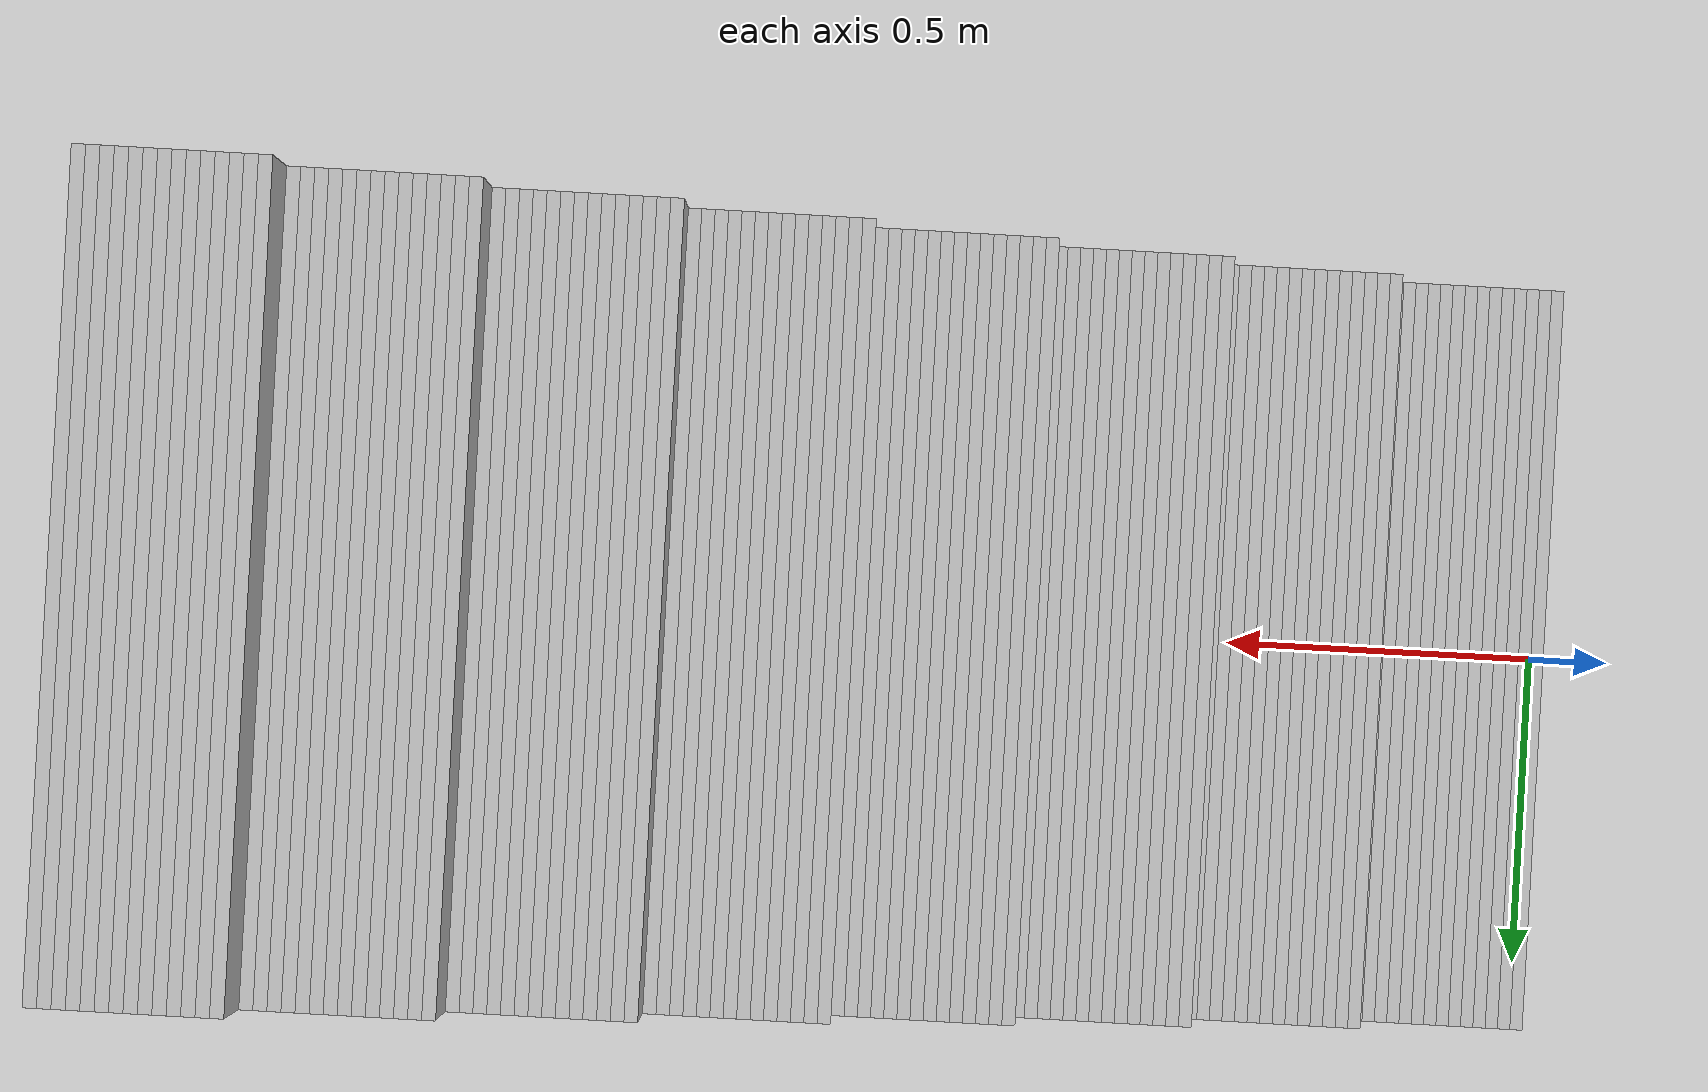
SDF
<?xml version="1.0"?>
<sdf version="1.6">
  <world name="stair_lab">
    <!-- stair_lab_stairs_mid —— 由 stairstudy/fixtures.py 生成（离线候选件，**不被任何在册 launch 引用**）
         场景：踏步深 0.28m 级高 0.10m 共 8 级
         请勿与 worlds/m1_world.world 混用：后者是红线件（各跑 world_before/after.sha 对它取指纹）。 -->
    <include><uri>model://ground_plane</uri></include>
    <include><uri>model://sun</uri></include>
    <model name="stairs_mid">
      <static>1</static>
      <pose>0.000 0.000 0 0 0 0</pose>
        <link name="seg0">
          <pose>0.010 0.000 0.050 0 0 0</pose>
          <collision name="c0"><geometry><box><size>0.02 1.200 0.100</size></box></geometry></collision>
          <visual name="v0"><geometry><box><size>0.02 1.200 0.100</size></box></geometry></visual>
        </link>        <link name="seg1">
          <pose>0.030 0.000 0.050 0 0 0</pose>
          <collision name="c1"><geometry><box><size>0.02 1.200 0.100</size></box></geometry></collision>
          <visual name="v1"><geometry><box><size>0.02 1.200 0.100</size></box></geometry></visual>
        </link>        <link name="seg2">
          <pose>0.050 0.000 0.050 0 0 0</pose>
          <collision name="c2"><geometry><box><size>0.02 1.200 0.100</size></box></geometry></collision>
          <visual name="v2"><geometry><box><size>0.02 1.200 0.100</size></box></geometry></visual>
        </link>        <link name="seg3">
          <pose>0.070 0.000 0.050 0 0 0</pose>
          <collision name="c3"><geometry><box><size>0.02 1.200 0.100</size></box></geometry></collision>
          <visual name="v3"><geometry><box><size>0.02 1.200 0.100</size></box></geometry></visual>
        </link>        <link name="seg4">
          <pose>0.090 0.000 0.050 0 0 0</pose>
          <collision name="c4"><geometry><box><size>0.02 1.200 0.100</size></box></geometry></collision>
          <visual name="v4"><geometry><box><size>0.02 1.200 0.100</size></box></geometry></visual>
        </link>        <link name="seg5">
          <pose>0.110 0.000 0.050 0 0 0</pose>
          <collision name="c5"><geometry><box><size>0.02 1.200 0.100</size></box></geometry></collision>
          <visual name="v5"><geometry><box><size>0.02 1.200 0.100</size></box></geometry></visual>
        </link>        <link name="seg6">
          <pose>0.130 0.000 0.050 0 0 0</pose>
          <collision name="c6"><geometry><box><size>0.02 1.200 0.100</size></box></geometry></collision>
          <visual name="v6"><geometry><box><size>0.02 1.200 0.100</size></box></geometry></visual>
        </link>        <link name="seg7">
          <pose>0.150 0.000 0.050 0 0 0</pose>
          <collision name="c7"><geometry><box><size>0.02 1.200 0.100</size></box></geometry></collision>
          <visual name="v7"><geometry><box><size>0.02 1.200 0.100</size></box></geometry></visual>
        </link>        <link name="seg8">
          <pose>0.170 0.000 0.050 0 0 0</pose>
          <collision name="c8"><geometry><box><size>0.02 1.200 0.100</size></box></geometry></collision>
          <visual name="v8"><geometry><box><size>0.02 1.200 0.100</size></box></geometry></visual>
        </link>        <link name="seg9">
          <pose>0.190 0.000 0.050 0 0 0</pose>
          <collision name="c9"><geometry><box><size>0.02 1.200 0.100</size></box></geometry></collision>
          <visual name="v9"><geometry><box><size>0.02 1.200 0.100</size></box></geometry></visual>
        </link>        <link name="seg10">
          <pose>0.210 0.000 0.050 0 0 0</pose>
          <collision name="c10"><geometry><box><size>0.02 1.200 0.100</size></box></geometry></collision>
          <visual name="v10"><geometry><box><size>0.02 1.200 0.100</size></box></geometry></visual>
        </link>        <link name="seg11">
          <pose>0.230 0.000 0.050 0 0 0</pose>
          <collision name="c11"><geometry><box><size>0.02 1.200 0.100</size></box></geometry></collision>
          <visual name="v11"><geometry><box><size>0.02 1.200 0.100</size></box></geometry></visual>
        </link>        <link name="seg12">
          <pose>0.250 0.000 0.050 0 0 0</pose>
          <collision name="c12"><geometry><box><size>0.02 1.200 0.100</size></box></geometry></collision>
          <visual name="v12"><geometry><box><size>0.02 1.200 0.100</size></box></geometry></visual>
        </link>        <link name="seg13">
          <pose>0.270 0.000 0.050 0 0 0</pose>
          <collision name="c13"><geometry><box><size>0.02 1.200 0.100</size></box></geometry></collision>
          <visual name="v13"><geometry><box><size>0.02 1.200 0.100</size></box></geometry></visual>
        </link>        <link name="seg14">
          <pose>0.290 0.000 0.100 0 0 0</pose>
          <collision name="c14"><geometry><box><size>0.02 1.200 0.200</size></box></geometry></collision>
          <visual name="v14"><geometry><box><size>0.02 1.200 0.200</size></box></geometry></visual>
        </link>        <link name="seg15">
          <pose>0.310 0.000 0.100 0 0 0</pose>
          <collision name="c15"><geometry><box><size>0.02 1.200 0.200</size></box></geometry></collision>
          <visual name="v15"><geometry><box><size>0.02 1.200 0.200</size></box></geometry></visual>
        </link>        <link name="seg16">
          <pose>0.330 0.000 0.100 0 0 0</pose>
          <collision name="c16"><geometry><box><size>0.02 1.200 0.200</size></box></geometry></collision>
          <visual name="v16"><geometry><box><size>0.02 1.200 0.200</size></box></geometry></visual>
        </link>        <link name="seg17">
          <pose>0.350 0.000 0.100 0 0 0</pose>
          <collision name="c17"><geometry><box><size>0.02 1.200 0.200</size></box></geometry></collision>
          <visual name="v17"><geometry><box><size>0.02 1.200 0.200</size></box></geometry></visual>
        </link>        <link name="seg18">
          <pose>0.370 0.000 0.100 0 0 0</pose>
          <collision name="c18"><geometry><box><size>0.02 1.200 0.200</size></box></geometry></collision>
          <visual name="v18"><geometry><box><size>0.02 1.200 0.200</size></box></geometry></visual>
        </link>        <link name="seg19">
          <pose>0.390 0.000 0.100 0 0 0</pose>
          <collision name="c19"><geometry><box><size>0.02 1.200 0.200</size></box></geometry></collision>
          <visual name="v19"><geometry><box><size>0.02 1.200 0.200</size></box></geometry></visual>
        </link>        <link name="seg20">
          <pose>0.410 0.000 0.100 0 0 0</pose>
          <collision name="c20"><geometry><box><size>0.02 1.200 0.200</size></box></geometry></collision>
          <visual name="v20"><geometry><box><size>0.02 1.200 0.200</size></box></geometry></visual>
        </link>        <link name="seg21">
          <pose>0.430 0.000 0.100 0 0 0</pose>
          <collision name="c21"><geometry><box><size>0.02 1.200 0.200</size></box></geometry></collision>
          <visual name="v21"><geometry><box><size>0.02 1.200 0.200</size></box></geometry></visual>
        </link>        <link name="seg22">
          <pose>0.450 0.000 0.100 0 0 0</pose>
          <collision name="c22"><geometry><box><size>0.02 1.200 0.200</size></box></geometry></collision>
          <visual name="v22"><geometry><box><size>0.02 1.200 0.200</size></box></geometry></visual>
        </link>        <link name="seg23">
          <pose>0.470 0.000 0.100 0 0 0</pose>
          <collision name="c23"><geometry><box><size>0.02 1.200 0.200</size></box></geometry></collision>
          <visual name="v23"><geometry><box><size>0.02 1.200 0.200</size></box></geometry></visual>
        </link>        <link name="seg24">
          <pose>0.490 0.000 0.100 0 0 0</pose>
          <collision name="c24"><geometry><box><size>0.02 1.200 0.200</size></box></geometry></collision>
          <visual name="v24"><geometry><box><size>0.02 1.200 0.200</size></box></geometry></visual>
        </link>        <link name="seg25">
          <pose>0.510 0.000 0.100 0 0 0</pose>
          <collision name="c25"><geometry><box><size>0.02 1.200 0.200</size></box></geometry></collision>
          <visual name="v25"><geometry><box><size>0.02 1.200 0.200</size></box></geometry></visual>
        </link>        <link name="seg26">
          <pose>0.530 0.000 0.100 0 0 0</pose>
          <collision name="c26"><geometry><box><size>0.02 1.200 0.200</size></box></geometry></collision>
          <visual name="v26"><geometry><box><size>0.02 1.200 0.200</size></box></geometry></visual>
        </link>        <link name="seg27">
          <pose>0.550 0.000 0.100 0 0 0</pose>
          <collision name="c27"><geometry><box><size>0.02 1.200 0.200</size></box></geometry></collision>
          <visual name="v27"><geometry><box><size>0.02 1.200 0.200</size></box></geometry></visual>
        </link>        <link name="seg28">
          <pose>0.570 0.000 0.150 0 0 0</pose>
          <collision name="c28"><geometry><box><size>0.02 1.200 0.300</size></box></geometry></collision>
          <visual name="v28"><geometry><box><size>0.02 1.200 0.300</size></box></geometry></visual>
        </link>        <link name="seg29">
          <pose>0.590 0.000 0.150 0 0 0</pose>
          <collision name="c29"><geometry><box><size>0.02 1.200 0.300</size></box></geometry></collision>
          <visual name="v29"><geometry><box><size>0.02 1.200 0.300</size></box></geometry></visual>
        </link>        <link name="seg30">
          <pose>0.610 0.000 0.150 0 0 0</pose>
          <collision name="c30"><geometry><box><size>0.02 1.200 0.300</size></box></geometry></collision>
          <visual name="v30"><geometry><box><size>0.02 1.200 0.300</size></box></geometry></visual>
        </link>        <link name="seg31">
          <pose>0.630 0.000 0.150 0 0 0</pose>
          <collision name="c31"><geometry><box><size>0.02 1.200 0.300</size></box></geometry></collision>
          <visual name="v31"><geometry><box><size>0.02 1.200 0.300</size></box></geometry></visual>
        </link>        <link name="seg32">
          <pose>0.650 0.000 0.150 0 0 0</pose>
          <collision name="c32"><geometry><box><size>0.02 1.200 0.300</size></box></geometry></collision>
          <visual name="v32"><geometry><box><size>0.02 1.200 0.300</size></box></geometry></visual>
        </link>        <link name="seg33">
          <pose>0.670 0.000 0.150 0 0 0</pose>
          <collision name="c33"><geometry><box><size>0.02 1.200 0.300</size></box></geometry></collision>
          <visual name="v33"><geometry><box><size>0.02 1.200 0.300</size></box></geometry></visual>
        </link>        <link name="seg34">
          <pose>0.690 0.000 0.150 0 0 0</pose>
          <collision name="c34"><geometry><box><size>0.02 1.200 0.300</size></box></geometry></collision>
          <visual name="v34"><geometry><box><size>0.02 1.200 0.300</size></box></geometry></visual>
        </link>        <link name="seg35">
          <pose>0.710 0.000 0.150 0 0 0</pose>
          <collision name="c35"><geometry><box><size>0.02 1.200 0.300</size></box></geometry></collision>
          <visual name="v35"><geometry><box><size>0.02 1.200 0.300</size></box></geometry></visual>
        </link>        <link name="seg36">
          <pose>0.730 0.000 0.150 0 0 0</pose>
          <collision name="c36"><geometry><box><size>0.02 1.200 0.300</size></box></geometry></collision>
          <visual name="v36"><geometry><box><size>0.02 1.200 0.300</size></box></geometry></visual>
        </link>        <link name="seg37">
          <pose>0.750 0.000 0.150 0 0 0</pose>
          <collision name="c37"><geometry><box><size>0.02 1.200 0.300</size></box></geometry></collision>
          <visual name="v37"><geometry><box><size>0.02 1.200 0.300</size></box></geometry></visual>
        </link>        <link name="seg38">
          <pose>0.770 0.000 0.150 0 0 0</pose>
          <collision name="c38"><geometry><box><size>0.02 1.200 0.300</size></box></geometry></collision>
          <visual name="v38"><geometry><box><size>0.02 1.200 0.300</size></box></geometry></visual>
        </link>        <link name="seg39">
          <pose>0.790 0.000 0.150 0 0 0</pose>
          <collision name="c39"><geometry><box><size>0.02 1.200 0.300</size></box></geometry></collision>
          <visual name="v39"><geometry><box><size>0.02 1.200 0.300</size></box></geometry></visual>
        </link>        <link name="seg40">
          <pose>0.810 0.000 0.150 0 0 0</pose>
          <collision name="c40"><geometry><box><size>0.02 1.200 0.300</size></box></geometry></collision>
          <visual name="v40"><geometry><box><size>0.02 1.200 0.300</size></box></geometry></visual>
        </link>        <link name="seg41">
          <pose>0.830 0.000 0.150 0 0 0</pose>
          <collision name="c41"><geometry><box><size>0.02 1.200 0.300</size></box></geometry></collision>
          <visual name="v41"><geometry><box><size>0.02 1.200 0.300</size></box></geometry></visual>
        </link>        <link name="seg42">
          <pose>0.850 0.000 0.200 0 0 0</pose>
          <collision name="c42"><geometry><box><size>0.02 1.200 0.400</size></box></geometry></collision>
          <visual name="v42"><geometry><box><size>0.02 1.200 0.400</size></box></geometry></visual>
        </link>        <link name="seg43">
          <pose>0.870 0.000 0.200 0 0 0</pose>
          <collision name="c43"><geometry><box><size>0.02 1.200 0.400</size></box></geometry></collision>
          <visual name="v43"><geometry><box><size>0.02 1.200 0.400</size></box></geometry></visual>
        </link>        <link name="seg44">
          <pose>0.890 0.000 0.200 0 0 0</pose>
          <collision name="c44"><geometry><box><size>0.02 1.200 0.400</size></box></geometry></collision>
          <visual name="v44"><geometry><box><size>0.02 1.200 0.400</size></box></geometry></visual>
        </link>        <link name="seg45">
          <pose>0.910 0.000 0.200 0 0 0</pose>
          <collision name="c45"><geometry><box><size>0.02 1.200 0.400</size></box></geometry></collision>
          <visual name="v45"><geometry><box><size>0.02 1.200 0.400</size></box></geometry></visual>
        </link>        <link name="seg46">
          <pose>0.930 0.000 0.200 0 0 0</pose>
          <collision name="c46"><geometry><box><size>0.02 1.200 0.400</size></box></geometry></collision>
          <visual name="v46"><geometry><box><size>0.02 1.200 0.400</size></box></geometry></visual>
        </link>        <link name="seg47">
          <pose>0.950 0.000 0.200 0 0 0</pose>
          <collision name="c47"><geometry><box><size>0.02 1.200 0.400</size></box></geometry></collision>
          <visual name="v47"><geometry><box><size>0.02 1.200 0.400</size></box></geometry></visual>
        </link>        <link name="seg48">
          <pose>0.970 0.000 0.200 0 0 0</pose>
          <collision name="c48"><geometry><box><size>0.02 1.200 0.400</size></box></geometry></collision>
          <visual name="v48"><geometry><box><size>0.02 1.200 0.400</size></box></geometry></visual>
        </link>        <link name="seg49">
          <pose>0.990 0.000 0.200 0 0 0</pose>
          <collision name="c49"><geometry><box><size>0.02 1.200 0.400</size></box></geometry></collision>
          <visual name="v49"><geometry><box><size>0.02 1.200 0.400</size></box></geometry></visual>
        </link>        <link name="seg50">
          <pose>1.010 0.000 0.200 0 0 0</pose>
          <collision name="c50"><geometry><box><size>0.02 1.200 0.400</size></box></geometry></collision>
          <visual name="v50"><geometry><box><size>0.02 1.200 0.400</size></box></geometry></visual>
        </link>        <link name="seg51">
          <pose>1.030 0.000 0.200 0 0 0</pose>
          <collision name="c51"><geometry><box><size>0.02 1.200 0.400</size></box></geometry></collision>
          <visual name="v51"><geometry><box><size>0.02 1.200 0.400</size></box></geometry></visual>
        </link>        <link name="seg52">
          <pose>1.050 0.000 0.200 0 0 0</pose>
          <collision name="c52"><geometry><box><size>0.02 1.200 0.400</size></box></geometry></collision>
          <visual name="v52"><geometry><box><size>0.02 1.200 0.400</size></box></geometry></visual>
        </link>        <link name="seg53">
          <pose>1.070 0.000 0.200 0 0 0</pose>
          <collision name="c53"><geometry><box><size>0.02 1.200 0.400</size></box></geometry></collision>
          <visual name="v53"><geometry><box><size>0.02 1.200 0.400</size></box></geometry></visual>
        </link>        <link name="seg54">
          <pose>1.090 0.000 0.200 0 0 0</pose>
          <collision name="c54"><geometry><box><size>0.02 1.200 0.400</size></box></geometry></collision>
          <visual name="v54"><geometry><box><size>0.02 1.200 0.400</size></box></geometry></visual>
        </link>        <link name="seg55">
          <pose>1.110 0.000 0.200 0 0 0</pose>
          <collision name="c55"><geometry><box><size>0.02 1.200 0.400</size></box></geometry></collision>
          <visual name="v55"><geometry><box><size>0.02 1.200 0.400</size></box></geometry></visual>
        </link>        <link name="seg56">
          <pose>1.130 0.000 0.250 0 0 0</pose>
          <collision name="c56"><geometry><box><size>0.02 1.200 0.500</size></box></geometry></collision>
          <visual name="v56"><geometry><box><size>0.02 1.200 0.500</size></box></geometry></visual>
        </link>        <link name="seg57">
          <pose>1.150 0.000 0.250 0 0 0</pose>
          <collision name="c57"><geometry><box><size>0.02 1.200 0.500</size></box></geometry></collision>
          <visual name="v57"><geometry><box><size>0.02 1.200 0.500</size></box></geometry></visual>
        </link>        <link name="seg58">
          <pose>1.170 0.000 0.250 0 0 0</pose>
          <collision name="c58"><geometry><box><size>0.02 1.200 0.500</size></box></geometry></collision>
          <visual name="v58"><geometry><box><size>0.02 1.200 0.500</size></box></geometry></visual>
        </link>        <link name="seg59">
          <pose>1.190 0.000 0.250 0 0 0</pose>
          <collision name="c59"><geometry><box><size>0.02 1.200 0.500</size></box></geometry></collision>
          <visual name="v59"><geometry><box><size>0.02 1.200 0.500</size></box></geometry></visual>
        </link>        <link name="seg60">
          <pose>1.210 0.000 0.250 0 0 0</pose>
          <collision name="c60"><geometry><box><size>0.02 1.200 0.500</size></box></geometry></collision>
          <visual name="v60"><geometry><box><size>0.02 1.200 0.500</size></box></geometry></visual>
        </link>        <link name="seg61">
          <pose>1.230 0.000 0.250 0 0 0</pose>
          <collision name="c61"><geometry><box><size>0.02 1.200 0.500</size></box></geometry></collision>
          <visual name="v61"><geometry><box><size>0.02 1.200 0.500</size></box></geometry></visual>
        </link>        <link name="seg62">
          <pose>1.250 0.000 0.250 0 0 0</pose>
          <collision name="c62"><geometry><box><size>0.02 1.200 0.500</size></box></geometry></collision>
          <visual name="v62"><geometry><box><size>0.02 1.200 0.500</size></box></geometry></visual>
        </link>        <link name="seg63">
          <pose>1.270 0.000 0.250 0 0 0</pose>
          <collision name="c63"><geometry><box><size>0.02 1.200 0.500</size></box></geometry></collision>
          <visual name="v63"><geometry><box><size>0.02 1.200 0.500</size></box></geometry></visual>
        </link>        <link name="seg64">
          <pose>1.290 0.000 0.250 0 0 0</pose>
          <collision name="c64"><geometry><box><size>0.02 1.200 0.500</size></box></geometry></collision>
          <visual name="v64"><geometry><box><size>0.02 1.200 0.500</size></box></geometry></visual>
        </link>        <link name="seg65">
          <pose>1.310 0.000 0.250 0 0 0</pose>
          <collision name="c65"><geometry><box><size>0.02 1.200 0.500</size></box></geometry></collision>
          <visual name="v65"><geometry><box><size>0.02 1.200 0.500</size></box></geometry></visual>
        </link>        <link name="seg66">
          <pose>1.330 0.000 0.250 0 0 0</pose>
          <collision name="c66"><geometry><box><size>0.02 1.200 0.500</size></box></geometry></collision>
          <visual name="v66"><geometry><box><size>0.02 1.200 0.500</size></box></geometry></visual>
        </link>        <link name="seg67">
          <pose>1.350 0.000 0.250 0 0 0</pose>
          <collision name="c67"><geometry><box><size>0.02 1.200 0.500</size></box></geometry></collision>
          <visual name="v67"><geometry><box><size>0.02 1.200 0.500</size></box></geometry></visual>
        </link>        <link name="seg68">
          <pose>1.370 0.000 0.250 0 0 0</pose>
          <collision name="c68"><geometry><box><size>0.02 1.200 0.500</size></box></geometry></collision>
          <visual name="v68"><geometry><box><size>0.02 1.200 0.500</size></box></geometry></visual>
        </link>        <link name="seg69">
          <pose>1.390 0.000 0.250 0 0 0</pose>
          <collision name="c69"><geometry><box><size>0.02 1.200 0.500</size></box></geometry></collision>
          <visual name="v69"><geometry><box><size>0.02 1.200 0.500</size></box></geometry></visual>
        </link>        <link name="seg70">
          <pose>1.410 0.000 0.300 0 0 0</pose>
          <collision name="c70"><geometry><box><size>0.02 1.200 0.600</size></box></geometry></collision>
          <visual name="v70"><geometry><box><size>0.02 1.200 0.600</size></box></geometry></visual>
        </link>        <link name="seg71">
          <pose>1.430 0.000 0.300 0 0 0</pose>
          <collision name="c71"><geometry><box><size>0.02 1.200 0.600</size></box></geometry></collision>
          <visual name="v71"><geometry><box><size>0.02 1.200 0.600</size></box></geometry></visual>
        </link>        <link name="seg72">
          <pose>1.450 0.000 0.300 0 0 0</pose>
          <collision name="c72"><geometry><box><size>0.02 1.200 0.600</size></box></geometry></collision>
          <visual name="v72"><geometry><box><size>0.02 1.200 0.600</size></box></geometry></visual>
        </link>        <link name="seg73">
          <pose>1.470 0.000 0.300 0 0 0</pose>
          <collision name="c73"><geometry><box><size>0.02 1.200 0.600</size></box></geometry></collision>
          <visual name="v73"><geometry><box><size>0.02 1.200 0.600</size></box></geometry></visual>
        </link>        <link name="seg74">
          <pose>1.490 0.000 0.300 0 0 0</pose>
          <collision name="c74"><geometry><box><size>0.02 1.200 0.600</size></box></geometry></collision>
          <visual name="v74"><geometry><box><size>0.02 1.200 0.600</size></box></geometry></visual>
        </link>        <link name="seg75">
          <pose>1.510 0.000 0.300 0 0 0</pose>
          <collision name="c75"><geometry><box><size>0.02 1.200 0.600</size></box></geometry></collision>
          <visual name="v75"><geometry><box><size>0.02 1.200 0.600</size></box></geometry></visual>
        </link>        <link name="seg76">
          <pose>1.530 0.000 0.300 0 0 0</pose>
          <collision name="c76"><geometry><box><size>0.02 1.200 0.600</size></box></geometry></collision>
          <visual name="v76"><geometry><box><size>0.02 1.200 0.600</size></box></geometry></visual>
        </link>        <link name="seg77">
          <pose>1.550 0.000 0.300 0 0 0</pose>
          <collision name="c77"><geometry><box><size>0.02 1.200 0.600</size></box></geometry></collision>
          <visual name="v77"><geometry><box><size>0.02 1.200 0.600</size></box></geometry></visual>
        </link>        <link name="seg78">
          <pose>1.570 0.000 0.300 0 0 0</pose>
          <collision name="c78"><geometry><box><size>0.02 1.200 0.600</size></box></geometry></collision>
          <visual name="v78"><geometry><box><size>0.02 1.200 0.600</size></box></geometry></visual>
        </link>        <link name="seg79">
          <pose>1.590 0.000 0.300 0 0 0</pose>
          <collision name="c79"><geometry><box><size>0.02 1.200 0.600</size></box></geometry></collision>
          <visual name="v79"><geometry><box><size>0.02 1.200 0.600</size></box></geometry></visual>
        </link>        <link name="seg80">
          <pose>1.610 0.000 0.300 0 0 0</pose>
          <collision name="c80"><geometry><box><size>0.02 1.200 0.600</size></box></geometry></collision>
          <visual name="v80"><geometry><box><size>0.02 1.200 0.600</size></box></geometry></visual>
        </link>        <link name="seg81">
          <pose>1.630 0.000 0.300 0 0 0</pose>
          <collision name="c81"><geometry><box><size>0.02 1.200 0.600</size></box></geometry></collision>
          <visual name="v81"><geometry><box><size>0.02 1.200 0.600</size></box></geometry></visual>
        </link>        <link name="seg82">
          <pose>1.650 0.000 0.300 0 0 0</pose>
          <collision name="c82"><geometry><box><size>0.02 1.200 0.600</size></box></geometry></collision>
          <visual name="v82"><geometry><box><size>0.02 1.200 0.600</size></box></geometry></visual>
        </link>        <link name="seg83">
          <pose>1.670 0.000 0.300 0 0 0</pose>
          <collision name="c83"><geometry><box><size>0.02 1.200 0.600</size></box></geometry></collision>
          <visual name="v83"><geometry><box><size>0.02 1.200 0.600</size></box></geometry></visual>
        </link>        <link name="seg84">
          <pose>1.690 0.000 0.350 0 0 0</pose>
          <collision name="c84"><geometry><box><size>0.02 1.200 0.700</size></box></geometry></collision>
          <visual name="v84"><geometry><box><size>0.02 1.200 0.700</size></box></geometry></visual>
        </link>        <link name="seg85">
          <pose>1.710 0.000 0.350 0 0 0</pose>
          <collision name="c85"><geometry><box><size>0.02 1.200 0.700</size></box></geometry></collision>
          <visual name="v85"><geometry><box><size>0.02 1.200 0.700</size></box></geometry></visual>
        </link>        <link name="seg86">
          <pose>1.730 0.000 0.350 0 0 0</pose>
          <collision name="c86"><geometry><box><size>0.02 1.200 0.700</size></box></geometry></collision>
          <visual name="v86"><geometry><box><size>0.02 1.200 0.700</size></box></geometry></visual>
        </link>        <link name="seg87">
          <pose>1.750 0.000 0.350 0 0 0</pose>
          <collision name="c87"><geometry><box><size>0.02 1.200 0.700</size></box></geometry></collision>
          <visual name="v87"><geometry><box><size>0.02 1.200 0.700</size></box></geometry></visual>
        </link>        <link name="seg88">
          <pose>1.770 0.000 0.350 0 0 0</pose>
          <collision name="c88"><geometry><box><size>0.02 1.200 0.700</size></box></geometry></collision>
          <visual name="v88"><geometry><box><size>0.02 1.200 0.700</size></box></geometry></visual>
        </link>        <link name="seg89">
          <pose>1.790 0.000 0.350 0 0 0</pose>
          <collision name="c89"><geometry><box><size>0.02 1.200 0.700</size></box></geometry></collision>
          <visual name="v89"><geometry><box><size>0.02 1.200 0.700</size></box></geometry></visual>
        </link>        <link name="seg90">
          <pose>1.810 0.000 0.350 0 0 0</pose>
          <collision name="c90"><geometry><box><size>0.02 1.200 0.700</size></box></geometry></collision>
          <visual name="v90"><geometry><box><size>0.02 1.200 0.700</size></box></geometry></visual>
        </link>        <link name="seg91">
          <pose>1.830 0.000 0.350 0 0 0</pose>
          <collision name="c91"><geometry><box><size>0.02 1.200 0.700</size></box></geometry></collision>
          <visual name="v91"><geometry><box><size>0.02 1.200 0.700</size></box></geometry></visual>
        </link>        <link name="seg92">
          <pose>1.850 0.000 0.350 0 0 0</pose>
          <collision name="c92"><geometry><box><size>0.02 1.200 0.700</size></box></geometry></collision>
          <visual name="v92"><geometry><box><size>0.02 1.200 0.700</size></box></geometry></visual>
        </link>        <link name="seg93">
          <pose>1.870 0.000 0.350 0 0 0</pose>
          <collision name="c93"><geometry><box><size>0.02 1.200 0.700</size></box></geometry></collision>
          <visual name="v93"><geometry><box><size>0.02 1.200 0.700</size></box></geometry></visual>
        </link>        <link name="seg94">
          <pose>1.890 0.000 0.350 0 0 0</pose>
          <collision name="c94"><geometry><box><size>0.02 1.200 0.700</size></box></geometry></collision>
          <visual name="v94"><geometry><box><size>0.02 1.200 0.700</size></box></geometry></visual>
        </link>        <link name="seg95">
          <pose>1.910 0.000 0.350 0 0 0</pose>
          <collision name="c95"><geometry><box><size>0.02 1.200 0.700</size></box></geometry></collision>
          <visual name="v95"><geometry><box><size>0.02 1.200 0.700</size></box></geometry></visual>
        </link>        <link name="seg96">
          <pose>1.930 0.000 0.350 0 0 0</pose>
          <collision name="c96"><geometry><box><size>0.02 1.200 0.700</size></box></geometry></collision>
          <visual name="v96"><geometry><box><size>0.02 1.200 0.700</size></box></geometry></visual>
        </link>        <link name="seg97">
          <pose>1.950 0.000 0.350 0 0 0</pose>
          <collision name="c97"><geometry><box><size>0.02 1.200 0.700</size></box></geometry></collision>
          <visual name="v97"><geometry><box><size>0.02 1.200 0.700</size></box></geometry></visual>
        </link>        <link name="seg98">
          <pose>1.970 0.000 0.400 0 0 0</pose>
          <collision name="c98"><geometry><box><size>0.02 1.200 0.800</size></box></geometry></collision>
          <visual name="v98"><geometry><box><size>0.02 1.200 0.800</size></box></geometry></visual>
        </link>        <link name="seg99">
          <pose>1.990 0.000 0.400 0 0 0</pose>
          <collision name="c99"><geometry><box><size>0.02 1.200 0.800</size></box></geometry></collision>
          <visual name="v99"><geometry><box><size>0.02 1.200 0.800</size></box></geometry></visual>
        </link>        <link name="seg100">
          <pose>2.010 0.000 0.400 0 0 0</pose>
          <collision name="c100"><geometry><box><size>0.02 1.200 0.800</size></box></geometry></collision>
          <visual name="v100"><geometry><box><size>0.02 1.200 0.800</size></box></geometry></visual>
        </link>        <link name="seg101">
          <pose>2.030 0.000 0.400 0 0 0</pose>
          <collision name="c101"><geometry><box><size>0.02 1.200 0.800</size></box></geometry></collision>
          <visual name="v101"><geometry><box><size>0.02 1.200 0.800</size></box></geometry></visual>
        </link>        <link name="seg102">
          <pose>2.050 0.000 0.400 0 0 0</pose>
          <collision name="c102"><geometry><box><size>0.02 1.200 0.800</size></box></geometry></collision>
          <visual name="v102"><geometry><box><size>0.02 1.200 0.800</size></box></geometry></visual>
        </link>        <link name="seg103">
          <pose>2.070 0.000 0.400 0 0 0</pose>
          <collision name="c103"><geometry><box><size>0.02 1.200 0.800</size></box></geometry></collision>
          <visual name="v103"><geometry><box><size>0.02 1.200 0.800</size></box></geometry></visual>
        </link>        <link name="seg104">
          <pose>2.090 0.000 0.400 0 0 0</pose>
          <collision name="c104"><geometry><box><size>0.02 1.200 0.800</size></box></geometry></collision>
          <visual name="v104"><geometry><box><size>0.02 1.200 0.800</size></box></geometry></visual>
        </link>        <link name="seg105">
          <pose>2.110 0.000 0.400 0 0 0</pose>
          <collision name="c105"><geometry><box><size>0.02 1.200 0.800</size></box></geometry></collision>
          <visual name="v105"><geometry><box><size>0.02 1.200 0.800</size></box></geometry></visual>
        </link>        <link name="seg106">
          <pose>2.130 0.000 0.400 0 0 0</pose>
          <collision name="c106"><geometry><box><size>0.02 1.200 0.800</size></box></geometry></collision>
          <visual name="v106"><geometry><box><size>0.02 1.200 0.800</size></box></geometry></visual>
        </link>        <link name="seg107">
          <pose>2.150 0.000 0.400 0 0 0</pose>
          <collision name="c107"><geometry><box><size>0.02 1.200 0.800</size></box></geometry></collision>
          <visual name="v107"><geometry><box><size>0.02 1.200 0.800</size></box></geometry></visual>
        </link>        <link name="seg108">
          <pose>2.170 0.000 0.400 0 0 0</pose>
          <collision name="c108"><geometry><box><size>0.02 1.200 0.800</size></box></geometry></collision>
          <visual name="v108"><geometry><box><size>0.02 1.200 0.800</size></box></geometry></visual>
        </link>        <link name="seg109">
          <pose>2.190 0.000 0.400 0 0 0</pose>
          <collision name="c109"><geometry><box><size>0.02 1.200 0.800</size></box></geometry></collision>
          <visual name="v109"><geometry><box><size>0.02 1.200 0.800</size></box></geometry></visual>
        </link>        <link name="seg110">
          <pose>2.210 0.000 0.400 0 0 0</pose>
          <collision name="c110"><geometry><box><size>0.02 1.200 0.800</size></box></geometry></collision>
          <visual name="v110"><geometry><box><size>0.02 1.200 0.800</size></box></geometry></visual>
        </link>        <link name="seg111">
          <pose>2.230 0.000 0.400 0 0 0</pose>
          <collision name="c111"><geometry><box><size>0.02 1.200 0.800</size></box></geometry></collision>
          <visual name="v111"><geometry><box><size>0.02 1.200 0.800</size></box></geometry></visual>
        </link>
    </model>

  </world>
</sdf>
